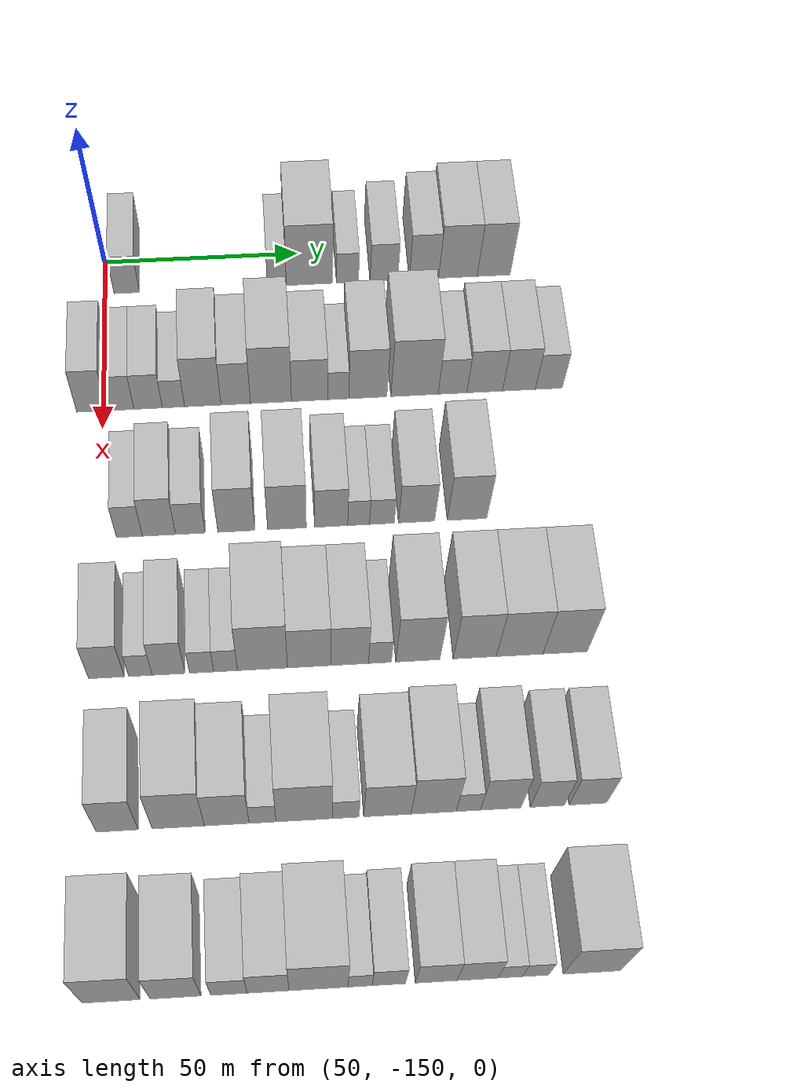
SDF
<sdf version="1.6">
 <world name="default">
  <model name="building_43">
   <static>1</static>
   <pose>50.0000 -144.2796 0 0.000000 0.000000 0.000000</pose>
   <link name="link">
    <pose>0 0 7.50 0 0 0</pose>
    <collision name="collision"><geometry><box><size>20.0000 6.5038 15.0000</size></box></geometry></collision>
    <visual name="visual">
     <cast_shadows>0</cast_shadows>
     <geometry><box><size>20.0000 6.5038 15.0000</size></box></geometry>
     <material>
      <script>
       <uri>model://HANNAS_wall/materials/scripts</uri>
       <uri>model://HANNAS_wall/materials/textures</uri>
       <name>vrc/HANNAS_wall</name>
      </script>
     </material>
    </visual>
   </link>
  </model>
  <model name="building_44">
   <static>1</static>
   <pose>50.0000 -105.7746 0 0.000000 0.000000 0.000000</pose>
   <link name="link">
    <pose>0 0 6.00 0 0 0</pose>
    <collision name="collision"><geometry><box><size>20.0000 4.8354 12.0000</size></box></geometry></collision>
    <visual name="visual">
     <cast_shadows>0</cast_shadows>
     <geometry><box><size>20.0000 4.8354 12.0000</size></box></geometry>
     <material>
      <script>
       <uri>model://HANNAS_wall/materials/scripts</uri>
       <uri>model://HANNAS_wall/materials/textures</uri>
       <name>vrc/HANNAS_wall</name>
      </script>
     </material>
    </visual>
   </link>
  </model>
  <model name="building_45">
   <static>1</static>
   <pose>50.0000 -97.3916 0 0.000000 0.000000 0.000000</pose>
   <link name="link">
    <pose>0 0 12.00 0 0 0</pose>
    <collision name="collision"><geometry><box><size>20.0000 11.9306 24.0000</size></box></geometry></collision>
    <visual name="visual">
     <cast_shadows>0</cast_shadows>
     <geometry><box><size>20.0000 11.9306 24.0000</size></box></geometry>
     <material>
      <script>
       <uri>model://HANNAS_wall/materials/scripts</uri>
       <uri>model://HANNAS_wall/materials/textures</uri>
       <name>vrc/HANNAS_wall</name>
      </script>
     </material>
    </visual>
   </link>
  </model>
  <model name="building_46">
   <static>1</static>
   <pose>50.0000 -87.5963 0 0.000000 0.000000 0.000000</pose>
   <link name="link">
    <pose>0 0 6.00 0 0 0</pose>
    <collision name="collision"><geometry><box><size>20.0000 5.6601 12.0000</size></box></geometry></collision>
    <visual name="visual">
     <cast_shadows>0</cast_shadows>
     <geometry><box><size>20.0000 5.6601 12.0000</size></box></geometry>
     <material>
      <script>
       <uri>model://HANNAS_wall/materials/scripts</uri>
       <uri>model://HANNAS_wall/materials/textures</uri>
       <name>vrc/HANNAS_wall</name>
      </script>
     </material>
    </visual>
   </link>
  </model>
  <model name="building_47">
   <static>1</static>
   <pose>50.0000 -78.2058 0 0.000000 0.000000 0.000000</pose>
   <link name="link">
    <pose>0 0 7.50 0 0 0</pose>
    <collision name="collision"><geometry><box><size>20.0000 7.1207 15.0000</size></box></geometry></collision>
    <visual name="visual">
     <cast_shadows>0</cast_shadows>
     <geometry><box><size>20.0000 7.1207 15.0000</size></box></geometry>
     <material>
      <script>
       <uri>model://HANNAS_wall/materials/scripts</uri>
       <uri>model://HANNAS_wall/materials/textures</uri>
       <name>vrc/HANNAS_wall</name>
      </script>
     </material>
    </visual>
   </link>
  </model>
  <model name="building_48">
   <static>1</static>
   <pose>50.0000 -67.8514 0 0.000000 0.000000 0.000000</pose>
   <link name="link">
    <pose>0 0 9.00 0 0 0</pose>
    <collision name="collision"><geometry><box><size>20.0000 7.5882 18.0000</size></box></geometry></collision>
    <visual name="visual">
     <cast_shadows>0</cast_shadows>
     <geometry><box><size>20.0000 7.5882 18.0000</size></box></geometry>
     <material>
      <script>
       <uri>model://HANNAS_wall/materials/scripts</uri>
       <uri>model://HANNAS_wall/materials/textures</uri>
       <name>vrc/HANNAS_wall</name>
      </script>
     </material>
    </visual>
   </link>
  </model>
  <model name="building_49">
   <static>1</static>
   <pose>50.0000 -59.0607 0 0.000000 0.000000 0.000000</pose>
   <link name="link">
    <pose>0 0 10.50 0 0 0</pose>
    <collision name="collision"><geometry><box><size>20.0000 9.9933 21.0000</size></box></geometry></collision>
    <visual name="visual">
     <cast_shadows>0</cast_shadows>
     <geometry><box><size>20.0000 9.9933 21.0000</size></box></geometry>
     <material>
      <script>
       <uri>model://HANNAS_wall/materials/scripts</uri>
       <uri>model://HANNAS_wall/materials/textures</uri>
       <name>vrc/HANNAS_wall</name>
      </script>
     </material>
    </visual>
   </link>
  </model>
  <model name="building_50">
   <static>1</static>
   <pose>50.0000 -49.7917 0 0.000000 0.000000 0.000000</pose>
   <link name="link">
    <pose>0 0 10.50 0 0 0</pose>
    <collision name="collision"><geometry><box><size>20.0000 8.5446 21.0000</size></box></geometry></collision>
    <visual name="visual">
     <cast_shadows>0</cast_shadows>
     <geometry><box><size>20.0000 8.5446 21.0000</size></box></geometry>
     <material>
      <script>
       <uri>model://HANNAS_wall/materials/scripts</uri>
       <uri>model://HANNAS_wall/materials/textures</uri>
       <name>vrc/HANNAS_wall</name>
      </script>
     </material>
    </visual>
   </link>
  </model>
  <model name="building_166">
   <static>1</static>
   <pose>85.0000 -152.7918 0 0.000000 0.000000 0.000000</pose>
   <link name="link">
    <pose>0 0 9.00 0 0 0</pose>
    <collision name="collision"><geometry><box><size>20.0000 7.3203 18.0000</size></box></geometry></collision>
    <visual name="visual">
     <cast_shadows>0</cast_shadows>
     <geometry><box><size>20.0000 7.3203 18.0000</size></box></geometry>
     <material>
      <script>
       <uri>model://HANNAS_wall/materials/scripts</uri>
       <uri>model://HANNAS_wall/materials/textures</uri>
       <name>vrc/HANNAS_wall</name>
      </script>
     </material>
    </visual>
   </link>
  </model>
  <model name="building_167">
   <static>1</static>
   <pose>85.0000 -145.8023 0 0.000000 0.000000 0.000000</pose>
   <link name="link">
    <pose>0 0 7.50 0 0 0</pose>
    <collision name="collision"><geometry><box><size>20.0000 6.6587 15.0000</size></box></geometry></collision>
    <visual name="visual">
     <cast_shadows>0</cast_shadows>
     <geometry><box><size>20.0000 6.6587 15.0000</size></box></geometry>
     <material>
      <script>
       <uri>model://HANNAS_wall/materials/scripts</uri>
       <uri>model://HANNAS_wall/materials/textures</uri>
       <name>vrc/HANNAS_wall</name>
      </script>
     </material>
    </visual>
   </link>
  </model>
  <model name="building_168">
   <static>1</static>
   <pose>85.0000 -138.9845 0 0.000000 0.000000 0.000000</pose>
   <link name="link">
    <pose>0 0 7.50 0 0 0</pose>
    <collision name="collision"><geometry><box><size>20.0000 6.9769 15.0000</size></box></geometry></collision>
    <visual name="visual">
     <cast_shadows>0</cast_shadows>
     <geometry><box><size>20.0000 6.9769 15.0000</size></box></geometry>
     <material>
      <script>
       <uri>model://HANNAS_wall/materials/scripts</uri>
       <uri>model://HANNAS_wall/materials/textures</uri>
       <name>vrc/HANNAS_wall</name>
      </script>
     </material>
    </visual>
   </link>
  </model>
  <model name="building_169">
   <static>1</static>
   <pose>85.0000 -132.7610 0 0.000000 0.000000 0.000000</pose>
   <link name="link">
    <pose>0 0 6.00 0 0 0</pose>
    <collision name="collision"><geometry><box><size>20.0000 5.4702 12.0000</size></box></geometry></collision>
    <visual name="visual">
     <cast_shadows>0</cast_shadows>
     <geometry><box><size>20.0000 5.4702 12.0000</size></box></geometry>
     <material>
      <script>
       <uri>model://HANNAS_wall/materials/scripts</uri>
       <uri>model://HANNAS_wall/materials/textures</uri>
       <name>vrc/HANNAS_wall</name>
      </script>
     </material>
    </visual>
   </link>
  </model>
  <model name="building_170">
   <static>1</static>
   <pose>85.0000 -125.5428 0 0.000000 0.000000 0.000000</pose>
   <link name="link">
    <pose>0 0 10.50 0 0 0</pose>
    <collision name="collision"><geometry><box><size>20.0000 8.9662 21.0000</size></box></geometry></collision>
    <visual name="visual">
     <cast_shadows>0</cast_shadows>
     <geometry><box><size>20.0000 8.9662 21.0000</size></box></geometry>
     <material>
      <script>
       <uri>model://HANNAS_wall/materials/scripts</uri>
       <uri>model://HANNAS_wall/materials/textures</uri>
       <name>vrc/HANNAS_wall</name>
      </script>
     </material>
    </visual>
   </link>
  </model>
  <model name="building_171">
   <static>1</static>
   <pose>85.0000 -117.4337 0 0.000000 0.000000 0.000000</pose>
   <link name="link">
    <pose>0 0 9.00 0 0 0</pose>
    <collision name="collision"><geometry><box><size>20.0000 7.2519 18.0000</size></box></geometry></collision>
    <visual name="visual">
     <cast_shadows>0</cast_shadows>
     <geometry><box><size>20.0000 7.2519 18.0000</size></box></geometry>
     <material>
      <script>
       <uri>model://HANNAS_wall/materials/scripts</uri>
       <uri>model://HANNAS_wall/materials/textures</uri>
       <name>vrc/HANNAS_wall</name>
      </script>
     </material>
    </visual>
   </link>
  </model>
  <model name="building_172">
   <static>1</static>
   <pose>85.0000 -108.7679 0 0.000000 0.000000 0.000000</pose>
   <link name="link">
    <pose>0 0 12.00 0 0 0</pose>
    <collision name="collision"><geometry><box><size>20.0000 10.0796 24.0000</size></box></geometry></collision>
    <visual name="visual">
     <cast_shadows>0</cast_shadows>
     <geometry><box><size>20.0000 10.0796 24.0000</size></box></geometry>
     <material>
      <script>
       <uri>model://HANNAS_wall/materials/scripts</uri>
       <uri>model://HANNAS_wall/materials/textures</uri>
       <name>vrc/HANNAS_wall</name>
      </script>
     </material>
    </visual>
   </link>
  </model>
  <model name="building_173">
   <static>1</static>
   <pose>85.0000 -99.2608 0 0.000000 0.000000 0.000000</pose>
   <link name="link">
    <pose>0 0 9.00 0 0 0</pose>
    <collision name="collision"><geometry><box><size>20.0000 8.9346 18.0000</size></box></geometry></collision>
    <visual name="visual">
     <cast_shadows>0</cast_shadows>
     <geometry><box><size>20.0000 8.9346 18.0000</size></box></geometry>
     <material>
      <script>
       <uri>model://HANNAS_wall/materials/scripts</uri>
       <uri>model://HANNAS_wall/materials/textures</uri>
       <name>vrc/HANNAS_wall</name>
      </script>
     </material>
    </visual>
   </link>
  </model>
  <model name="building_174">
   <static>1</static>
   <pose>85.0000 -92.2006 0 0.000000 0.000000 0.000000</pose>
   <link name="link">
    <pose>0 0 6.00 0 0 0</pose>
    <collision name="collision"><geometry><box><size>20.0000 5.1858 12.0000</size></box></geometry></collision>
    <visual name="visual">
     <cast_shadows>0</cast_shadows>
     <geometry><box><size>20.0000 5.1858 12.0000</size></box></geometry>
     <material>
      <script>
       <uri>model://HANNAS_wall/materials/scripts</uri>
       <uri>model://HANNAS_wall/materials/textures</uri>
       <name>vrc/HANNAS_wall</name>
      </script>
     </material>
    </visual>
   </link>
  </model>
  <model name="building_175">
   <static>1</static>
   <pose>85.0000 -84.8973 0 0.000000 0.000000 0.000000</pose>
   <link name="link">
    <pose>0 0 10.50 0 0 0</pose>
    <collision name="collision"><geometry><box><size>20.0000 9.4208 21.0000</size></box></geometry></collision>
    <visual name="visual">
     <cast_shadows>0</cast_shadows>
     <geometry><box><size>20.0000 9.4208 21.0000</size></box></geometry>
     <material>
      <script>
       <uri>model://HANNAS_wall/materials/scripts</uri>
       <uri>model://HANNAS_wall/materials/textures</uri>
       <name>vrc/HANNAS_wall</name>
      </script>
     </material>
    </visual>
   </link>
  </model>
  <model name="building_176">
   <static>1</static>
   <pose>85.0000 -73.3342 0 0.000000 0.000000 0.000000</pose>
   <link name="link">
    <pose>0 0 12.00 0 0 0</pose>
    <collision name="collision"><geometry><box><size>20.0000 11.7054 24.0000</size></box></geometry></collision>
    <visual name="visual">
     <cast_shadows>0</cast_shadows>
     <geometry><box><size>20.0000 11.7054 24.0000</size></box></geometry>
     <material>
      <script>
       <uri>model://HANNAS_wall/materials/scripts</uri>
       <uri>model://HANNAS_wall/materials/textures</uri>
       <name>vrc/HANNAS_wall</name>
      </script>
     </material>
    </visual>
   </link>
  </model>
  <model name="building_177">
   <static>1</static>
   <pose>85.0000 -63.9231 0 0.000000 0.000000 0.000000</pose>
   <link name="link">
    <pose>0 0 7.50 0 0 0</pose>
    <collision name="collision"><geometry><box><size>20.0000 7.1169 15.0000</size></box></geometry></collision>
    <visual name="visual">
     <cast_shadows>0</cast_shadows>
     <geometry><box><size>20.0000 7.1169 15.0000</size></box></geometry>
     <material>
      <script>
       <uri>model://HANNAS_wall/materials/scripts</uri>
       <uri>model://HANNAS_wall/materials/textures</uri>
       <name>vrc/HANNAS_wall</name>
      </script>
     </material>
    </visual>
   </link>
  </model>
  <model name="building_178">
   <static>1</static>
   <pose>85.0000 -55.9435 0 0.000000 0.000000 0.000000</pose>
   <link name="link">
    <pose>0 0 9.00 0 0 0</pose>
    <collision name="collision"><geometry><box><size>20.0000 8.8422 18.0000</size></box></geometry></collision>
    <visual name="visual">
     <cast_shadows>0</cast_shadows>
     <geometry><box><size>20.0000 8.8422 18.0000</size></box></geometry>
     <material>
      <script>
       <uri>model://HANNAS_wall/materials/scripts</uri>
       <uri>model://HANNAS_wall/materials/textures</uri>
       <name>vrc/HANNAS_wall</name>
      </script>
     </material>
    </visual>
   </link>
  </model>
  <model name="building_179">
   <static>1</static>
   <pose>85.0000 -47.4359 0 0.000000 0.000000 0.000000</pose>
   <link name="link">
    <pose>0 0 9.00 0 0 0</pose>
    <collision name="collision"><geometry><box><size>20.0000 8.1730 18.0000</size></box></geometry></collision>
    <visual name="visual">
     <cast_shadows>0</cast_shadows>
     <geometry><box><size>20.0000 8.1730 18.0000</size></box></geometry>
     <material>
      <script>
       <uri>model://HANNAS_wall/materials/scripts</uri>
       <uri>model://HANNAS_wall/materials/textures</uri>
       <name>vrc/HANNAS_wall</name>
      </script>
     </material>
    </visual>
   </link>
  </model>
  <model name="building_180">
   <static>1</static>
   <pose>85.0000 -40.0020 0 0.000000 0.000000 0.000000</pose>
   <link name="link">
    <pose>0 0 7.50 0 0 0</pose>
    <collision name="collision"><geometry><box><size>20.0000 6.6948 15.0000</size></box></geometry></collision>
    <visual name="visual">
     <cast_shadows>0</cast_shadows>
     <geometry><box><size>20.0000 6.6948 15.0000</size></box></geometry>
     <material>
      <script>
       <uri>model://HANNAS_wall/materials/scripts</uri>
       <uri>model://HANNAS_wall/materials/textures</uri>
       <name>vrc/HANNAS_wall</name>
      </script>
     </material>
    </visual>
   </link>
  </model>
  <model name="building_297">
   <static>1</static>
   <pose>120.0000 -143.5047 0 0.000000 0.000000 0.000000</pose>
   <link name="link">
    <pose>0 0 7.50 0 0 0</pose>
    <collision name="collision"><geometry><box><size>20.0000 6.0819 15.0000</size></box></geometry></collision>
    <visual name="visual">
     <cast_shadows>0</cast_shadows>
     <geometry><box><size>20.0000 6.0819 15.0000</size></box></geometry>
     <material>
      <script>
       <uri>model://HANNAS_wall/materials/scripts</uri>
       <uri>model://HANNAS_wall/materials/textures</uri>
       <name>vrc/HANNAS_wall</name>
      </script>
     </material>
    </visual>
   </link>
  </model>
  <model name="building_298">
   <static>1</static>
   <pose>120.0000 -136.5746 0 0.000000 0.000000 0.000000</pose>
   <link name="link">
    <pose>0 0 9.00 0 0 0</pose>
    <collision name="collision"><geometry><box><size>20.0000 7.7782 18.0000</size></box></geometry></collision>
    <visual name="visual">
     <cast_shadows>0</cast_shadows>
     <geometry><box><size>20.0000 7.7782 18.0000</size></box></geometry>
     <material>
      <script>
       <uri>model://HANNAS_wall/materials/scripts</uri>
       <uri>model://HANNAS_wall/materials/textures</uri>
       <name>vrc/HANNAS_wall</name>
      </script>
     </material>
    </visual>
   </link>
  </model>
  <model name="building_299">
   <static>1</static>
   <pose>120.0000 -129.2150 0 0.000000 0.000000 0.000000</pose>
   <link name="link">
    <pose>0 0 7.50 0 0 0</pose>
    <collision name="collision"><geometry><box><size>20.0000 6.9408 15.0000</size></box></geometry></collision>
    <visual name="visual">
     <cast_shadows>0</cast_shadows>
     <geometry><box><size>20.0000 6.9408 15.0000</size></box></geometry>
     <material>
      <script>
       <uri>model://HANNAS_wall/materials/scripts</uri>
       <uri>model://HANNAS_wall/materials/textures</uri>
       <name>vrc/HANNAS_wall</name>
      </script>
     </material>
    </visual>
   </link>
  </model>
  <model name="building_300">
   <static>1</static>
   <pose>120.0000 -118.3871 0 0.000000 0.000000 0.000000</pose>
   <link name="link">
    <pose>0 0 10.50 0 0 0</pose>
    <collision name="collision"><geometry><box><size>20.0000 8.7150 21.0000</size></box></geometry></collision>
    <visual name="visual">
     <cast_shadows>0</cast_shadows>
     <geometry><box><size>20.0000 8.7150 21.0000</size></box></geometry>
     <material>
      <script>
       <uri>model://HANNAS_wall/materials/scripts</uri>
       <uri>model://HANNAS_wall/materials/textures</uri>
       <name>vrc/HANNAS_wall</name>
      </script>
     </material>
    </visual>
   </link>
  </model>
  <model name="building_301">
   <static>1</static>
   <pose>120.0000 -106.4809 0 0.000000 0.000000 0.000000</pose>
   <link name="link">
    <pose>0 0 10.50 0 0 0</pose>
    <collision name="collision"><geometry><box><size>20.0000 9.0975 21.0000</size></box></geometry></collision>
    <visual name="visual">
     <cast_shadows>0</cast_shadows>
     <geometry><box><size>20.0000 9.0975 21.0000</size></box></geometry>
     <material>
      <script>
       <uri>model://HANNAS_wall/materials/scripts</uri>
       <uri>model://HANNAS_wall/materials/textures</uri>
       <name>vrc/HANNAS_wall</name>
      </script>
     </material>
    </visual>
   </link>
  </model>
  <model name="building_302">
   <static>1</static>
   <pose>120.0000 -96.0543 0 0.000000 0.000000 0.000000</pose>
   <link name="link">
    <pose>0 0 9.00 0 0 0</pose>
    <collision name="collision"><geometry><box><size>20.0000 7.7557 18.0000</size></box></geometry></collision>
    <visual name="visual">
     <cast_shadows>0</cast_shadows>
     <geometry><box><size>20.0000 7.7557 18.0000</size></box></geometry>
     <material>
      <script>
       <uri>model://HANNAS_wall/materials/scripts</uri>
       <uri>model://HANNAS_wall/materials/textures</uri>
       <name>vrc/HANNAS_wall</name>
      </script>
     </material>
    </visual>
   </link>
  </model>
  <model name="building_303">
   <static>1</static>
   <pose>120.0000 -89.5970 0 0.000000 0.000000 0.000000</pose>
   <link name="link">
    <pose>0 0 6.00 0 0 0</pose>
    <collision name="collision"><geometry><box><size>20.0000 5.1590 12.0000</size></box></geometry></collision>
    <visual name="visual">
     <cast_shadows>0</cast_shadows>
     <geometry><box><size>20.0000 5.1590 12.0000</size></box></geometry>
     <material>
      <script>
       <uri>model://HANNAS_wall/materials/scripts</uri>
       <uri>model://HANNAS_wall/materials/textures</uri>
       <name>vrc/HANNAS_wall</name>
      </script>
     </material>
    </visual>
   </link>
  </model>
  <model name="building_304">
   <static>1</static>
   <pose>120.0000 -84.0905 0 0.000000 0.000000 0.000000</pose>
   <link name="link">
    <pose>0 0 6.00 0 0 0</pose>
    <collision name="collision"><geometry><box><size>20.0000 5.8541 12.0000</size></box></geometry></collision>
    <visual name="visual">
     <cast_shadows>0</cast_shadows>
     <geometry><box><size>20.0000 5.8541 12.0000</size></box></geometry>
     <material>
      <script>
       <uri>model://HANNAS_wall/materials/scripts</uri>
       <uri>model://HANNAS_wall/materials/textures</uri>
       <name>vrc/HANNAS_wall</name>
      </script>
     </material>
    </visual>
   </link>
  </model>
  <model name="building_305">
   <static>1</static>
   <pose>120.0000 -75.8935 0 0.000000 0.000000 0.000000</pose>
   <link name="link">
    <pose>0 0 9.00 0 0 0</pose>
    <collision name="collision"><geometry><box><size>20.0000 8.5400 18.0000</size></box></geometry></collision>
    <visual name="visual">
     <cast_shadows>0</cast_shadows>
     <geometry><box><size>20.0000 8.5400 18.0000</size></box></geometry>
     <material>
      <script>
       <uri>model://HANNAS_wall/materials/scripts</uri>
       <uri>model://HANNAS_wall/materials/textures</uri>
       <name>vrc/HANNAS_wall</name>
      </script>
     </material>
    </visual>
   </link>
  </model>
  <model name="building_306">
   <static>1</static>
   <pose>120.0000 -63.9357 0 0.000000 0.000000 0.000000</pose>
   <link name="link">
    <pose>0 0 10.50 0 0 0</pose>
    <collision name="collision"><geometry><box><size>20.0000 9.3756 21.0000</size></box></geometry></collision>
    <visual name="visual">
     <cast_shadows>0</cast_shadows>
     <geometry><box><size>20.0000 9.3756 21.0000</size></box></geometry>
     <material>
      <script>
       <uri>model://HANNAS_wall/materials/scripts</uri>
       <uri>model://HANNAS_wall/materials/textures</uri>
       <name>vrc/HANNAS_wall</name>
      </script>
     </material>
    </visual>
   </link>
  </model>
  <model name="building_426">
   <static>1</static>
   <pose>155.0000 -148.5972 0 0.000000 0.000000 0.000000</pose>
   <link name="link">
    <pose>0 0 9.00 0 0 0</pose>
    <collision name="collision"><geometry><box><size>20.0000 7.9495 18.0000</size></box></geometry></collision>
    <visual name="visual">
     <cast_shadows>0</cast_shadows>
     <geometry><box><size>20.0000 7.9495 18.0000</size></box></geometry>
     <material>
      <script>
       <uri>model://HANNAS_wall/materials/scripts</uri>
       <uri>model://HANNAS_wall/materials/textures</uri>
       <name>vrc/HANNAS_wall</name>
      </script>
     </material>
    </visual>
   </link>
  </model>
  <model name="building_427">
   <static>1</static>
   <pose>155.0000 -140.9987 0 0.000000 0.000000 0.000000</pose>
   <link name="link">
    <pose>0 0 6.00 0 0 0</pose>
    <collision name="collision"><geometry><box><size>20.0000 5.2476 12.0000</size></box></geometry></collision>
    <visual name="visual">
     <cast_shadows>0</cast_shadows>
     <geometry><box><size>20.0000 5.2476 12.0000</size></box></geometry>
     <material>
      <script>
       <uri>model://HANNAS_wall/materials/scripts</uri>
       <uri>model://HANNAS_wall/materials/textures</uri>
       <name>vrc/HANNAS_wall</name>
      </script>
     </material>
    </visual>
   </link>
  </model>
  <model name="building_428">
   <static>1</static>
   <pose>155.0000 -134.6843 0 0.000000 0.000000 0.000000</pose>
   <link name="link">
    <pose>0 0 9.00 0 0 0</pose>
    <collision name="collision"><geometry><box><size>20.0000 7.3812 18.0000</size></box></geometry></collision>
    <visual name="visual">
     <cast_shadows>0</cast_shadows>
     <geometry><box><size>20.0000 7.3812 18.0000</size></box></geometry>
     <material>
      <script>
       <uri>model://HANNAS_wall/materials/scripts</uri>
       <uri>model://HANNAS_wall/materials/textures</uri>
       <name>vrc/HANNAS_wall</name>
      </script>
     </material>
    </visual>
   </link>
  </model>
  <model name="building_429">
   <static>1</static>
   <pose>155.0000 -127.2801 0 0.000000 0.000000 0.000000</pose>
   <link name="link">
    <pose>0 0 6.00 0 0 0</pose>
    <collision name="collision"><geometry><box><size>20.0000 5.4272 12.0000</size></box></geometry></collision>
    <visual name="visual">
     <cast_shadows>0</cast_shadows>
     <geometry><box><size>20.0000 5.4272 12.0000</size></box></geometry>
     <material>
      <script>
       <uri>model://HANNAS_wall/materials/scripts</uri>
       <uri>model://HANNAS_wall/materials/textures</uri>
       <name>vrc/HANNAS_wall</name>
      </script>
     </material>
    </visual>
   </link>
  </model>
  <model name="building_430">
   <static>1</static>
   <pose>155.0000 -121.9004 0 0.000000 0.000000 0.000000</pose>
   <link name="link">
    <pose>0 0 6.00 0 0 0</pose>
    <collision name="collision"><geometry><box><size>20.0000 5.3321 12.0000</size></box></geometry></collision>
    <visual name="visual">
     <cast_shadows>0</cast_shadows>
     <geometry><box><size>20.0000 5.3321 12.0000</size></box></geometry>
     <material>
      <script>
       <uri>model://HANNAS_wall/materials/scripts</uri>
       <uri>model://HANNAS_wall/materials/textures</uri>
       <name>vrc/HANNAS_wall</name>
      </script>
     </material>
    </visual>
   </link>
  </model>
  <model name="building_431">
   <static>1</static>
   <pose>155.0000 -113.6404 0 0.000000 0.000000 0.000000</pose>
   <link name="link">
    <pose>0 0 12.00 0 0 0</pose>
    <collision name="collision"><geometry><box><size>20.0000 11.1880 24.0000</size></box></geometry></collision>
    <visual name="visual">
     <cast_shadows>0</cast_shadows>
     <geometry><box><size>20.0000 11.1880 24.0000</size></box></geometry>
     <material>
      <script>
       <uri>model://HANNAS_wall/materials/scripts</uri>
       <uri>model://HANNAS_wall/materials/textures</uri>
       <name>vrc/HANNAS_wall</name>
      </script>
     </material>
    </visual>
   </link>
  </model>
  <model name="building_432">
   <static>1</static>
   <pose>155.0000 -103.1824 0 0.000000 0.000000 0.000000</pose>
   <link name="link">
    <pose>0 0 10.50 0 0 0</pose>
    <collision name="collision"><geometry><box><size>20.0000 9.7279 21.0000</size></box></geometry></collision>
    <visual name="visual">
     <cast_shadows>0</cast_shadows>
     <geometry><box><size>20.0000 9.7279 21.0000</size></box></geometry>
     <material>
      <script>
       <uri>model://HANNAS_wall/materials/scripts</uri>
       <uri>model://HANNAS_wall/materials/textures</uri>
       <name>vrc/HANNAS_wall</name>
      </script>
     </material>
    </visual>
   </link>
  </model>
  <model name="building_433">
   <static>1</static>
   <pose>155.0000 -94.0636 0 0.000000 0.000000 0.000000</pose>
   <link name="link">
    <pose>0 0 10.50 0 0 0</pose>
    <collision name="collision"><geometry><box><size>20.0000 8.5096 21.0000</size></box></geometry></collision>
    <visual name="visual">
     <cast_shadows>0</cast_shadows>
     <geometry><box><size>20.0000 8.5096 21.0000</size></box></geometry>
     <material>
      <script>
       <uri>model://HANNAS_wall/materials/scripts</uri>
       <uri>model://HANNAS_wall/materials/textures</uri>
       <name>vrc/HANNAS_wall</name>
      </script>
     </material>
    </visual>
   </link>
  </model>
  <model name="building_434">
   <static>1</static>
   <pose>155.0000 -87.2302 0 0.000000 0.000000 0.000000</pose>
   <link name="link">
    <pose>0 0 6.00 0 0 0</pose>
    <collision name="collision"><geometry><box><size>20.0000 5.1573 12.0000</size></box></geometry></collision>
    <visual name="visual">
     <cast_shadows>0</cast_shadows>
     <geometry><box><size>20.0000 5.1573 12.0000</size></box></geometry>
     <material>
      <script>
       <uri>model://HANNAS_wall/materials/scripts</uri>
       <uri>model://HANNAS_wall/materials/textures</uri>
       <name>vrc/HANNAS_wall</name>
      </script>
     </material>
    </visual>
   </link>
  </model>
  <model name="building_435">
   <static>1</static>
   <pose>155.0000 -78.6653 0 0.000000 0.000000 0.000000</pose>
   <link name="link">
    <pose>0 0 12.00 0 0 0</pose>
    <collision name="collision"><geometry><box><size>20.0000 9.9723 24.0000</size></box></geometry></collision>
    <visual name="visual">
     <cast_shadows>0</cast_shadows>
     <geometry><box><size>20.0000 9.9723 24.0000</size></box></geometry>
     <material>
      <script>
       <uri>model://HANNAS_wall/materials/scripts</uri>
       <uri>model://HANNAS_wall/materials/textures</uri>
       <name>vrc/HANNAS_wall</name>
      </script>
     </material>
    </visual>
   </link>
  </model>
  <model name="building_436">
   <static>1</static>
   <pose>155.0000 -65.8094 0 0.000000 0.000000 0.000000</pose>
   <link name="link">
    <pose>0 0 12.00 0 0 0</pose>
    <collision name="collision"><geometry><box><size>20.0000 9.7396 24.0000</size></box></geometry></collision>
    <visual name="visual">
     <cast_shadows>0</cast_shadows>
     <geometry><box><size>20.0000 9.7396 24.0000</size></box></geometry>
     <material>
      <script>
       <uri>model://HANNAS_wall/materials/scripts</uri>
       <uri>model://HANNAS_wall/materials/textures</uri>
       <name>vrc/HANNAS_wall</name>
      </script>
     </material>
    </visual>
   </link>
  </model>
  <model name="building_437">
   <static>1</static>
   <pose>155.0000 -55.6367 0 0.000000 0.000000 0.000000</pose>
   <link name="link">
    <pose>0 0 12.00 0 0 0</pose>
    <collision name="collision"><geometry><box><size>20.0000 10.6058 24.0000</size></box></geometry></collision>
    <visual name="visual">
     <cast_shadows>0</cast_shadows>
     <geometry><box><size>20.0000 10.6058 24.0000</size></box></geometry>
     <material>
      <script>
       <uri>model://HANNAS_wall/materials/scripts</uri>
       <uri>model://HANNAS_wall/materials/textures</uri>
       <name>vrc/HANNAS_wall</name>
      </script>
     </material>
    </visual>
   </link>
  </model>
  <model name="building_438">
   <static>1</static>
   <pose>155.0000 -45.2896 0 0.000000 0.000000 0.000000</pose>
   <link name="link">
    <pose>0 0 12.00 0 0 0</pose>
    <collision name="collision"><geometry><box><size>20.0000 10.0883 24.0000</size></box></geometry></collision>
    <visual name="visual">
     <cast_shadows>0</cast_shadows>
     <geometry><box><size>20.0000 10.0883 24.0000</size></box></geometry>
     <material>
      <script>
       <uri>model://HANNAS_wall/materials/scripts</uri>
       <uri>model://HANNAS_wall/materials/textures</uri>
       <name>vrc/HANNAS_wall</name>
      </script>
     </material>
    </visual>
   </link>
  </model>
  <model name="building_558">
   <static>1</static>
   <pose>190.0000 -146.0315 0 0.000000 0.000000 0.000000</pose>
   <link name="link">
    <pose>0 0 10.50 0 0 0</pose>
    <collision name="collision"><geometry><box><size>20.0000 8.9065 21.0000</size></box></geometry></collision>
    <visual name="visual">
     <cast_shadows>0</cast_shadows>
     <geometry><box><size>20.0000 8.9065 21.0000</size></box></geometry>
     <material>
      <script>
       <uri>model://HANNAS_wall/materials/scripts</uri>
       <uri>model://HANNAS_wall/materials/textures</uri>
       <name>vrc/HANNAS_wall</name>
      </script>
     </material>
    </visual>
   </link>
  </model>
  <model name="building_559">
   <static>1</static>
   <pose>190.0000 -133.0125 0 0.000000 0.000000 0.000000</pose>
   <link name="link">
    <pose>0 0 12.00 0 0 0</pose>
    <collision name="collision"><geometry><box><size>20.0000 11.1315 24.0000</size></box></geometry></collision>
    <visual name="visual">
     <cast_shadows>0</cast_shadows>
     <geometry><box><size>20.0000 11.1315 24.0000</size></box></geometry>
     <material>
      <script>
       <uri>model://HANNAS_wall/materials/scripts</uri>
       <uri>model://HANNAS_wall/materials/textures</uri>
       <name>vrc/HANNAS_wall</name>
      </script>
     </material>
    </visual>
   </link>
  </model>
  <model name="building_560">
   <static>1</static>
   <pose>190.0000 -122.6603 0 0.000000 0.000000 0.000000</pose>
   <link name="link">
    <pose>0 0 10.50 0 0 0</pose>
    <collision name="collision"><geometry><box><size>20.0000 9.5729 21.0000</size></box></geometry></collision>
    <visual name="visual">
     <cast_shadows>0</cast_shadows>
     <geometry><box><size>20.0000 9.5729 21.0000</size></box></geometry>
     <material>
      <script>
       <uri>model://HANNAS_wall/materials/scripts</uri>
       <uri>model://HANNAS_wall/materials/textures</uri>
       <name>vrc/HANNAS_wall</name>
      </script>
     </material>
    </visual>
   </link>
  </model>
  <model name="building_561">
   <static>1</static>
   <pose>190.0000 -115.0025 0 0.000000 0.000000 0.000000</pose>
   <link name="link">
    <pose>0 0 6.00 0 0 0</pose>
    <collision name="collision"><geometry><box><size>20.0000 5.7428 12.0000</size></box></geometry></collision>
    <visual name="visual">
     <cast_shadows>0</cast_shadows>
     <geometry><box><size>20.0000 5.7428 12.0000</size></box></geometry>
     <material>
      <script>
       <uri>model://HANNAS_wall/materials/scripts</uri>
       <uri>model://HANNAS_wall/materials/textures</uri>
       <name>vrc/HANNAS_wall</name>
      </script>
     </material>
    </visual>
   </link>
  </model>
  <model name="building_562">
   <static>1</static>
   <pose>190.0000 -106.1322 0 0.000000 0.000000 0.000000</pose>
   <link name="link">
    <pose>0 0 12.00 0 0 0</pose>
    <collision name="collision"><geometry><box><size>20.0000 11.9977 24.0000</size></box></geometry></collision>
    <visual name="visual">
     <cast_shadows>0</cast_shadows>
     <geometry><box><size>20.0000 11.9977 24.0000</size></box></geometry>
     <material>
      <script>
       <uri>model://HANNAS_wall/materials/scripts</uri>
       <uri>model://HANNAS_wall/materials/textures</uri>
       <name>vrc/HANNAS_wall</name>
      </script>
     </material>
    </visual>
   </link>
  </model>
  <model name="building_563">
   <static>1</static>
   <pose>190.0000 -97.2541 0 0.000000 0.000000 0.000000</pose>
   <link name="link">
    <pose>0 0 6.00 0 0 0</pose>
    <collision name="collision"><geometry><box><size>20.0000 5.7585 12.0000</size></box></geometry></collision>
    <visual name="visual">
     <cast_shadows>0</cast_shadows>
     <geometry><box><size>20.0000 5.7585 12.0000</size></box></geometry>
     <material>
      <script>
       <uri>model://HANNAS_wall/materials/scripts</uri>
       <uri>model://HANNAS_wall/materials/textures</uri>
       <name>vrc/HANNAS_wall</name>
      </script>
     </material>
    </visual>
   </link>
  </model>
  <model name="building_564">
   <static>1</static>
   <pose>190.0000 -88.2924 0 0.000000 0.000000 0.000000</pose>
   <link name="link">
    <pose>0 0 10.50 0 0 0</pose>
    <collision name="collision"><geometry><box><size>20.0000 10.1649 21.0000</size></box></geometry></collision>
    <visual name="visual">
     <cast_shadows>0</cast_shadows>
     <geometry><box><size>20.0000 10.1649 21.0000</size></box></geometry>
     <material>
      <script>
       <uri>model://HANNAS_wall/materials/scripts</uri>
       <uri>model://HANNAS_wall/materials/textures</uri>
       <name>vrc/HANNAS_wall</name>
      </script>
     </material>
    </visual>
   </link>
  </model>
  <model name="building_565">
   <static>1</static>
   <pose>190.0000 -78.3468 0 0.000000 0.000000 0.000000</pose>
   <link name="link">
    <pose>0 0 12.00 0 0 0</pose>
    <collision name="collision"><geometry><box><size>20.0000 9.7264 24.0000</size></box></geometry></collision>
    <visual name="visual">
     <cast_shadows>0</cast_shadows>
     <geometry><box><size>20.0000 9.7264 24.0000</size></box></geometry>
     <material>
      <script>
       <uri>model://HANNAS_wall/materials/scripts</uri>
       <uri>model://HANNAS_wall/materials/textures</uri>
       <name>vrc/HANNAS_wall</name>
      </script>
     </material>
    </visual>
   </link>
  </model>
  <model name="building_566">
   <static>1</static>
   <pose>190.0000 -70.8752 0 0.000000 0.000000 0.000000</pose>
   <link name="link">
    <pose>0 0 6.00 0 0 0</pose>
    <collision name="collision"><geometry><box><size>20.0000 5.2168 12.0000</size></box></geometry></collision>
    <visual name="visual">
     <cast_shadows>0</cast_shadows>
     <geometry><box><size>20.0000 5.2168 12.0000</size></box></geometry>
     <material>
      <script>
       <uri>model://HANNAS_wall/materials/scripts</uri>
       <uri>model://HANNAS_wall/materials/textures</uri>
       <name>vrc/HANNAS_wall</name>
      </script>
     </material>
    </visual>
   </link>
  </model>
  <model name="building_567">
   <static>1</static>
   <pose>190.0000 -63.8867 0 0.000000 0.000000 0.000000</pose>
   <link name="link">
    <pose>0 0 10.50 0 0 0</pose>
    <collision name="collision"><geometry><box><size>20.0000 8.7604 21.0000</size></box></geometry></collision>
    <visual name="visual">
     <cast_shadows>0</cast_shadows>
     <geometry><box><size>20.0000 8.7604 21.0000</size></box></geometry>
     <material>
      <script>
       <uri>model://HANNAS_wall/materials/scripts</uri>
       <uri>model://HANNAS_wall/materials/textures</uri>
       <name>vrc/HANNAS_wall</name>
      </script>
     </material>
    </visual>
   </link>
  </model>
  <model name="building_568">
   <static>1</static>
   <pose>190.0000 -53.8250 0 0.000000 0.000000 0.000000</pose>
   <link name="link">
    <pose>0 0 9.00 0 0 0</pose>
    <collision name="collision"><geometry><box><size>20.0000 7.3630 18.0000</size></box></geometry></collision>
    <visual name="visual">
     <cast_shadows>0</cast_shadows>
     <geometry><box><size>20.0000 7.3630 18.0000</size></box></geometry>
     <material>
      <script>
       <uri>model://HANNAS_wall/materials/scripts</uri>
       <uri>model://HANNAS_wall/materials/textures</uri>
       <name>vrc/HANNAS_wall</name>
      </script>
     </material>
    </visual>
   </link>
  </model>
  <model name="building_569">
   <static>1</static>
   <pose>190.0000 -45.0616 0 0.000000 0.000000 0.000000</pose>
   <link name="link">
    <pose>0 0 9.00 0 0 0</pose>
    <collision name="collision"><geometry><box><size>20.0000 8.1638 18.0000</size></box></geometry></collision>
    <visual name="visual">
     <cast_shadows>0</cast_shadows>
     <geometry><box><size>20.0000 8.1638 18.0000</size></box></geometry>
     <material>
      <script>
       <uri>model://HANNAS_wall/materials/scripts</uri>
       <uri>model://HANNAS_wall/materials/textures</uri>
       <name>vrc/HANNAS_wall</name>
      </script>
     </material>
    </visual>
   </link>
  </model>
  <model name="building_688">
   <static>1</static>
   <pose>225.0000 -147.0705 0 0.000000 0.000000 0.000000</pose>
   <link name="link">
    <pose>0 0 12.00 0 0 0</pose>
    <collision name="collision"><geometry><box><size>20.0000 11.7486 24.0000</size></box></geometry></collision>
    <visual name="visual">
     <cast_shadows>0</cast_shadows>
     <geometry><box><size>20.0000 11.7486 24.0000</size></box></geometry>
     <material>
      <script>
       <uri>model://HANNAS_wall/materials/scripts</uri>
       <uri>model://HANNAS_wall/materials/textures</uri>
       <name>vrc/HANNAS_wall</name>
      </script>
     </material>
    </visual>
   </link>
  </model>
  <model name="building_689">
   <static>1</static>
   <pose>225.0000 -134.0559 0 0.000000 0.000000 0.000000</pose>
   <link name="link">
    <pose>0 0 10.50 0 0 0</pose>
    <collision name="collision"><geometry><box><size>20.0000 10.2805 21.0000</size></box></geometry></collision>
    <visual name="visual">
     <cast_shadows>0</cast_shadows>
     <geometry><box><size>20.0000 10.2805 21.0000</size></box></geometry>
     <material>
      <script>
       <uri>model://HANNAS_wall/materials/scripts</uri>
       <uri>model://HANNAS_wall/materials/textures</uri>
       <name>vrc/HANNAS_wall</name>
      </script>
     </material>
    </visual>
   </link>
  </model>
  <model name="building_690">
   <static>1</static>
   <pose>225.0000 -123.2126 0 0.000000 0.000000 0.000000</pose>
   <link name="link">
    <pose>0 0 7.50 0 0 0</pose>
    <collision name="collision"><geometry><box><size>20.0000 7.4061 15.0000</size></box></geometry></collision>
    <visual name="visual">
     <cast_shadows>0</cast_shadows>
     <geometry><box><size>20.0000 7.4061 15.0000</size></box></geometry>
     <material>
      <script>
       <uri>model://HANNAS_wall/materials/scripts</uri>
       <uri>model://HANNAS_wall/materials/textures</uri>
       <name>vrc/HANNAS_wall</name>
      </script>
     </material>
    </visual>
   </link>
  </model>
  <model name="building_691">
   <static>1</static>
   <pose>225.0000 -115.2760 0 0.000000 0.000000 0.000000</pose>
   <link name="link">
    <pose>0 0 9.00 0 0 0</pose>
    <collision name="collision"><geometry><box><size>20.0000 8.4671 18.0000</size></box></geometry></collision>
    <visual name="visual">
     <cast_shadows>0</cast_shadows>
     <geometry><box><size>20.0000 8.4671 18.0000</size></box></geometry>
     <material>
      <script>
       <uri>model://HANNAS_wall/materials/scripts</uri>
       <uri>model://HANNAS_wall/materials/textures</uri>
       <name>vrc/HANNAS_wall</name>
      </script>
     </material>
    </visual>
   </link>
  </model>
  <model name="building_692">
   <static>1</static>
   <pose>225.0000 -105.0555 0 0.000000 0.000000 0.000000</pose>
   <link name="link">
    <pose>0 0 12.00 0 0 0</pose>
    <collision name="collision"><geometry><box><size>20.0000 11.9740 24.0000</size></box></geometry></collision>
    <visual name="visual">
     <cast_shadows>0</cast_shadows>
     <geometry><box><size>20.0000 11.9740 24.0000</size></box></geometry>
     <material>
      <script>
       <uri>model://HANNAS_wall/materials/scripts</uri>
       <uri>model://HANNAS_wall/materials/textures</uri>
       <name>vrc/HANNAS_wall</name>
      </script>
     </material>
    </visual>
   </link>
  </model>
  <model name="building_693">
   <static>1</static>
   <pose>225.0000 -96.6190 0 0.000000 0.000000 0.000000</pose>
   <link name="link">
    <pose>0 0 6.00 0 0 0</pose>
    <collision name="collision"><geometry><box><size>20.0000 4.8990 12.0000</size></box></geometry></collision>
    <visual name="visual">
     <cast_shadows>0</cast_shadows>
     <geometry><box><size>20.0000 4.8990 12.0000</size></box></geometry>
     <material>
      <script>
       <uri>model://HANNAS_wall/materials/scripts</uri>
       <uri>model://HANNAS_wall/materials/textures</uri>
       <name>vrc/HANNAS_wall</name>
      </script>
     </material>
    </visual>
   </link>
  </model>
  <model name="building_694">
   <static>1</static>
   <pose>225.0000 -90.7593 0 0.000000 0.000000 0.000000</pose>
   <link name="link">
    <pose>0 0 7.50 0 0 0</pose>
    <collision name="collision"><geometry><box><size>20.0000 6.8204 15.0000</size></box></geometry></collision>
    <visual name="visual">
     <cast_shadows>0</cast_shadows>
     <geometry><box><size>20.0000 6.8204 15.0000</size></box></geometry>
     <material>
      <script>
       <uri>model://HANNAS_wall/materials/scripts</uri>
       <uri>model://HANNAS_wall/materials/textures</uri>
       <name>vrc/HANNAS_wall</name>
      </script>
     </material>
    </visual>
   </link>
  </model>
  <model name="building_695">
   <static>1</static>
   <pose>225.0000 -81.0724 0 0.000000 0.000000 0.000000</pose>
   <link name="link">
    <pose>0 0 9.00 0 0 0</pose>
    <collision name="collision"><geometry><box><size>20.0000 8.5534 18.0000</size></box></geometry></collision>
    <visual name="visual">
     <cast_shadows>0</cast_shadows>
     <geometry><box><size>20.0000 8.5534 18.0000</size></box></geometry>
     <material>
      <script>
       <uri>model://HANNAS_wall/materials/scripts</uri>
       <uri>model://HANNAS_wall/materials/textures</uri>
       <name>vrc/HANNAS_wall</name>
      </script>
     </material>
    </visual>
   </link>
  </model>
  <model name="building_696">
   <static>1</static>
   <pose>225.0000 -72.6076 0 0.000000 0.000000 0.000000</pose>
   <link name="link">
    <pose>0 0 9.00 0 0 0</pose>
    <collision name="collision"><geometry><box><size>20.0000 8.3762 18.0000</size></box></geometry></collision>
    <visual name="visual">
     <cast_shadows>0</cast_shadows>
     <geometry><box><size>20.0000 8.3762 18.0000</size></box></geometry>
     <material>
      <script>
       <uri>model://HANNAS_wall/materials/scripts</uri>
       <uri>model://HANNAS_wall/materials/textures</uri>
       <name>vrc/HANNAS_wall</name>
      </script>
     </material>
    </visual>
   </link>
  </model>
  <model name="building_697">
   <static>1</static>
   <pose>225.0000 -65.9216 0 0.000000 0.000000 0.000000</pose>
   <link name="link">
    <pose>0 0 6.00 0 0 0</pose>
    <collision name="collision"><geometry><box><size>20.0000 4.9958 12.0000</size></box></geometry></collision>
    <visual name="visual">
     <cast_shadows>0</cast_shadows>
     <geometry><box><size>20.0000 4.9958 12.0000</size></box></geometry>
     <material>
      <script>
       <uri>model://HANNAS_wall/materials/scripts</uri>
       <uri>model://HANNAS_wall/materials/textures</uri>
       <name>vrc/HANNAS_wall</name>
      </script>
     </material>
    </visual>
   </link>
  </model>
  <model name="building_698">
   <static>1</static>
   <pose>225.0000 -60.7255 0 0.000000 0.000000 0.000000</pose>
   <link name="link">
    <pose>0 0 6.00 0 0 0</pose>
    <collision name="collision"><geometry><box><size>20.0000 5.3963 12.0000</size></box></geometry></collision>
    <visual name="visual">
     <cast_shadows>0</cast_shadows>
     <geometry><box><size>20.0000 5.3963 12.0000</size></box></geometry>
     <material>
      <script>
       <uri>model://HANNAS_wall/materials/scripts</uri>
       <uri>model://HANNAS_wall/materials/textures</uri>
       <name>vrc/HANNAS_wall</name>
      </script>
     </material>
    </visual>
   </link>
  </model>
  <model name="building_699">
   <static>1</static>
   <pose>225.0000 -49.1811 0 0.000000 0.000000 0.000000</pose>
   <link name="link">
    <pose>0 0 12.00 0 0 0</pose>
    <collision name="collision"><geometry><box><size>20.0000 11.6926 24.0000</size></box></geometry></collision>
    <visual name="visual">
     <cast_shadows>0</cast_shadows>
     <geometry><box><size>20.0000 11.6926 24.0000</size></box></geometry>
     <material>
      <script>
       <uri>model://HANNAS_wall/materials/scripts</uri>
       <uri>model://HANNAS_wall/materials/textures</uri>
       <name>vrc/HANNAS_wall</name>
      </script>
     </material>
    </visual>
   </link>
  </model>
 </world>
</sdf>
